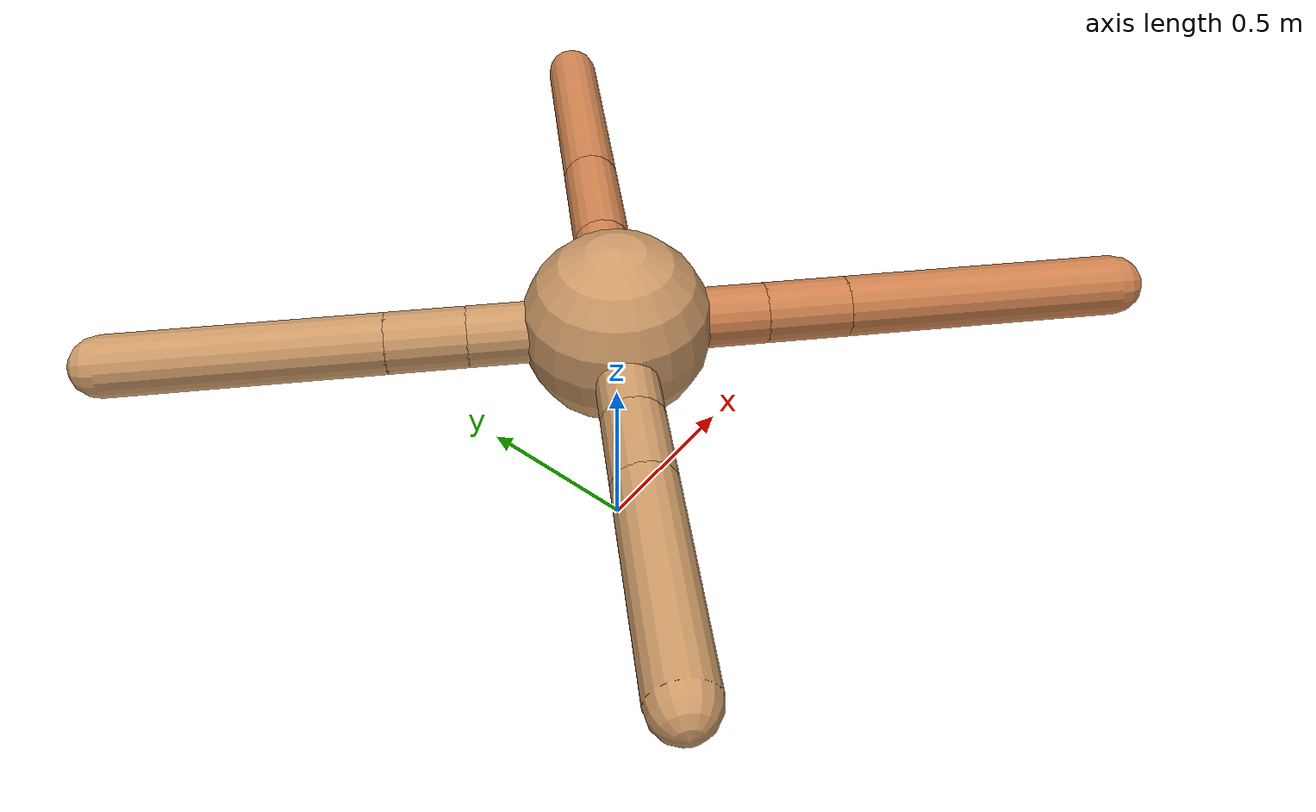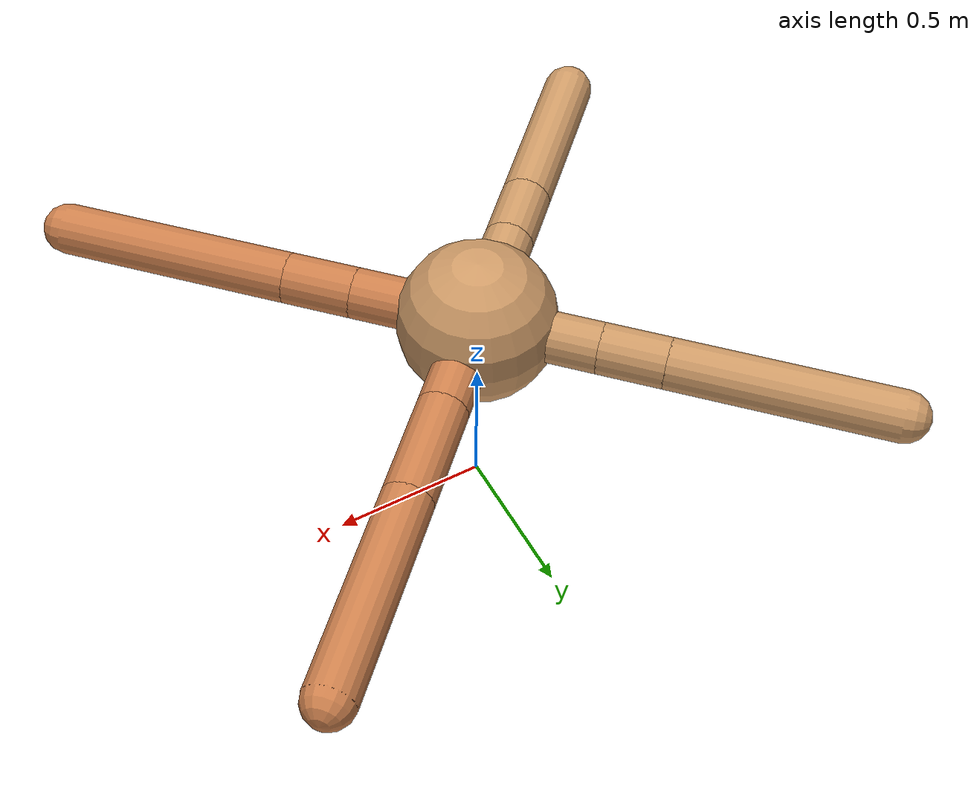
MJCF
<mujoco model="ant">
  <compiler angle="degree" coordinate="local" inertiafromgeom="true" />
  <option integrator="RK4" timestep="0.01" />
  <custom>
    <numeric data="0.0 0.0 0.55 1.0 0.0 0.0 0.0 0.0 1.0 0.0 -1.0 0.0 -1.0 0.0 1.0" name="init_qpos" />
  </custom>
  <default>
    <joint armature="1" damping="1" limited="true" />
    <geom conaffinity="0" condim="3" density="5.0" friction="1.5 0.1 0.1" margin="0.01" rgba="0.8 0.6 0.4 1" />
  </default>
  <worldbody>
    <body name="torso" pos="0 0 0.75">
      <geom name="torso_geom" pos="0 0 0" size="0.25" type="sphere" />

      <body name="front_left_leg" pos="0 0 0">
        <geom fromto="0.0 0.0 0.0 0.25326224156141625 0.25326224156141625 0.0" name="aux_1_geom" size="0.08" type="capsule" rgba=".8 .5 .3 1" />
        <body name="aux_1" pos="0.25326224156141625 0.25326224156141625 0.0">
          <joint axis="0 0 1" name="hip_1" pos="0.0 0.0 0.0" range="-40 40" type="hinge" />
          <geom fromto="0.0 0.0 0.0 0.23632001881288833 0.23632001881288833 0.0" name="left_leg_geom" size="0.08" type="capsule" rgba=".8 .5 .3 1" />
          <body pos="0.23632001881288833 0.23632001881288833 0.0" name="front_left_foot">
            <joint axis="-1 1 0" name="ankle_1" pos="0.0 0.0 0.0" range="30 100" type="hinge" />
            <geom fromto="0.0 0.0 0.0 0.4690027481923788 0.4690027481923788 0.0" name="left_ankle_geom" size="0.08" type="capsule" rgba=".8 .5 .3 1" />
          </body>
        </body>
      </body>
      <body name="front_right_leg" pos="0 0 0">
        <geom fromto="0.0 0.0 0.0 -0.27239964088944485 0.27239964088944485 0.0" name="aux_2_geom" size="0.08" type="capsule" />
        <body name="aux_2" pos="-0.27239964088944485 0.27239964088944485 0.0">
          <joint axis="0 0 1" name="hip_2" pos="0.0 0.0 0.0" range="-40 40" type="hinge" />
          <geom fromto="0.0 0.0 0.0 -0.14619548689358797 0.14619548689358797 0.0" name="right_leg_geom" size="0.08" type="capsule" />
          <body pos="-0.14619548689358797 0.14619548689358797 0.0" name="front_right_foot">
            <joint axis="1 1 0" name="ankle_2" pos="0.0 0.0 0.0" range="-100 -30" type="hinge" />
            <geom fromto="0.0 0.0 0.0 -0.49635869557331147 0.49635869557331147 0.0" name="right_ankle_geom" size="0.08" type="capsule" />
          </body>
        </body>
      </body>
      <body name="left_back_leg" pos="0 0 0">
        <geom fromto="0.0 0.0 0.0 -0.2453050227695428 -0.2453050227695428 0.0" name="aux_3_geom" size="0.08" type="capsule" />
        <body name="aux_3" pos="-0.2453050227695428 -0.2453050227695428 0.0">
          <joint axis="0 0 1" name="hip_3" pos="0.0 0.0 0.0" range="-40 40" type="hinge" />
          <geom fromto="0.0 0.0 0.0 -0.14257664901305592 -0.14257664901305592 0.0" name="back_leg_geom" size="0.08" type="capsule" />
          <body pos="-0.14257664901305592 -0.14257664901305592 0.0" name="left_back_foot">
            <joint axis="-1 1 0" name="ankle_3" pos="0.0 0.0 0.0" range="-100 -30" type="hinge" />
            <geom fromto="0.0 0.0 0.0 -0.379101917319337 -0.379101917319337 0.0" name="third_ankle_geom" size="0.08" type="capsule" />
          </body>
        </body>
      </body>
      <body name="right_back_leg" pos="0 0 0">
        <geom fromto="0.0 0.0 0.0 0.276647566384195 -0.276647566384195 0.0" name="aux_4_geom" size="0.08" type="capsule" rgba=".8 .5 .3 1" />
        <body name="aux_4" pos="0.276647566384195 -0.276647566384195 0.0">
          <joint axis="0 0 1" name="hip_4" pos="0.0 0.0 0.0" range="-40 40" type="hinge" />
          <geom fromto="0.0 0.0 0.0 0.1545437876686427 -0.1545437876686427 0.0" name="rightback_leg_geom" size="0.08" type="capsule" rgba=".8 .5 .3 1" />
          <body pos="0.1545437876686427 -0.1545437876686427 0.0" name="right_back_foot">
            <joint axis="1 1 0" name="ankle_4" pos="0.0 0.0 0.0" range="30 100" type="hinge" />
            <geom fromto="0.0 0.0 0.0 0.523444205169372 -0.523444205169372 0.0" name="fourth_ankle_geom" size="0.08" type="capsule" rgba=".8 .5 .3 1" />
          </body>
        </body>
      </body>
    </body>
  </worldbody>
  <actuator>
    <motor ctrllimited="true" ctrlrange="-1.0 1.0" joint="hip_4" gear="150" />
    <motor ctrllimited="true" ctrlrange="-1.0 1.0" joint="ankle_4" gear="150" />
    <motor ctrllimited="true" ctrlrange="-1.0 1.0" joint="hip_1" gear="150" />
    <motor ctrllimited="true" ctrlrange="-1.0 1.0" joint="ankle_1" gear="150" />
    <motor ctrllimited="true" ctrlrange="-1.0 1.0" joint="hip_2" gear="150" />
    <motor ctrllimited="true" ctrlrange="-1.0 1.0" joint="ankle_2" gear="150" />
    <motor ctrllimited="true" ctrlrange="-1.0 1.0" joint="hip_3" gear="150" />
    <motor ctrllimited="true" ctrlrange="-1.0 1.0" joint="ankle_3" gear="150" />
  </actuator>
</mujoco>
